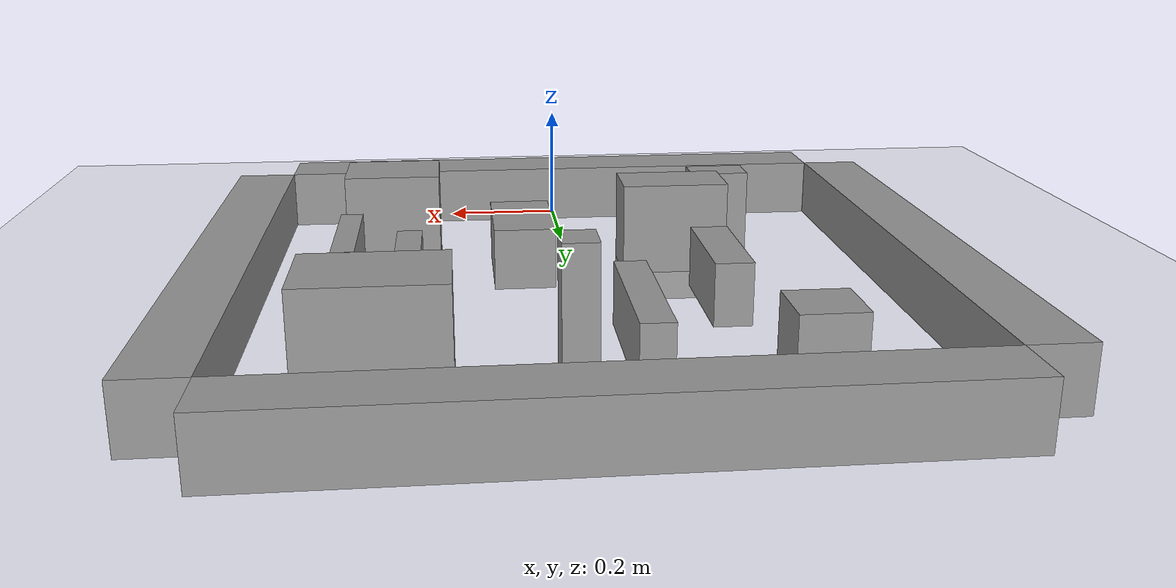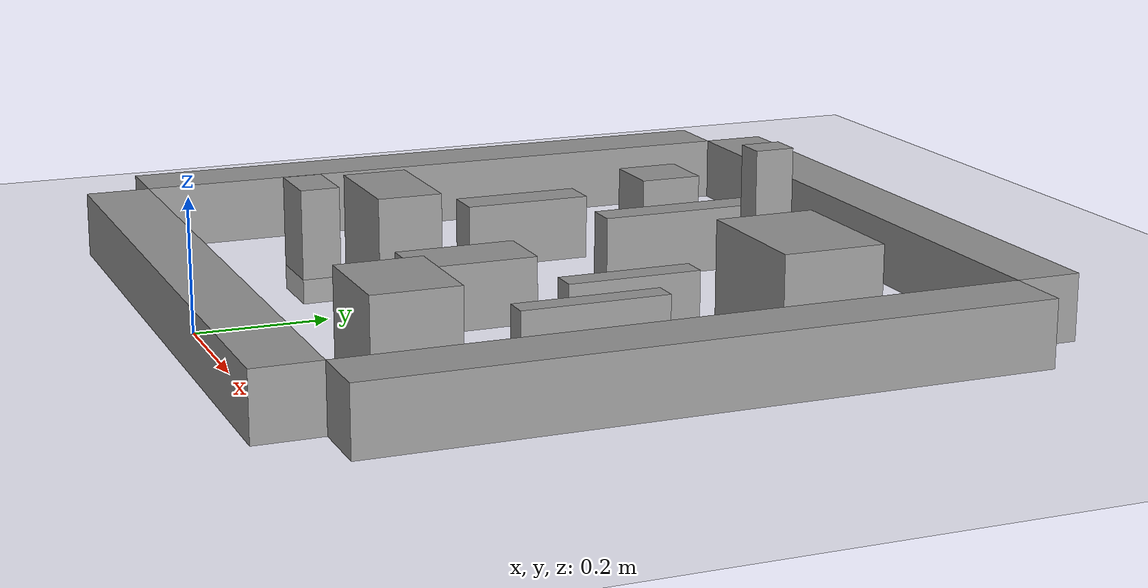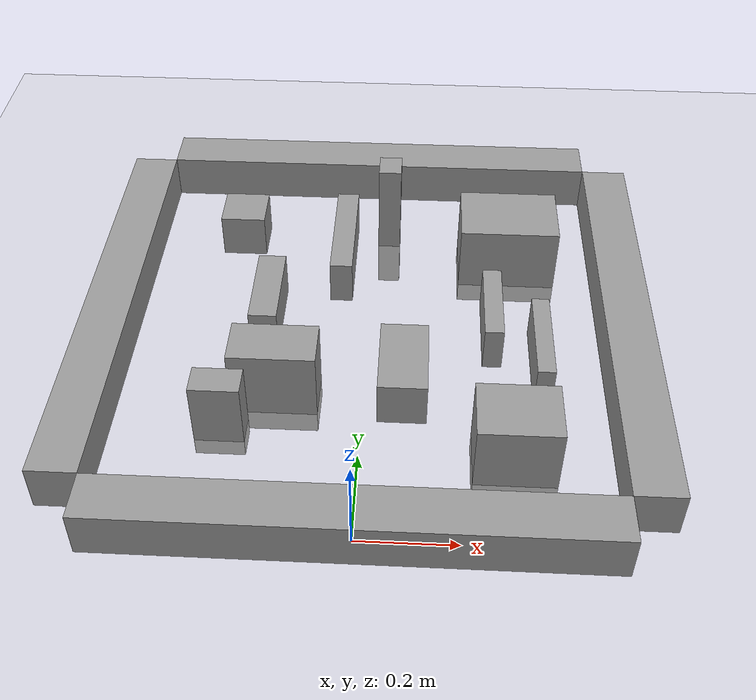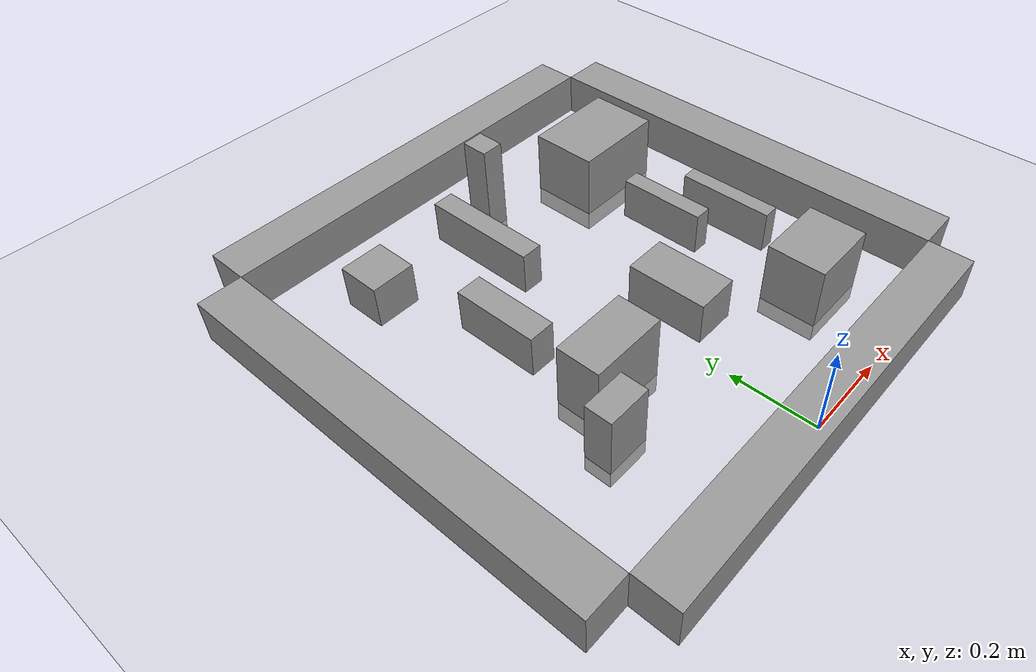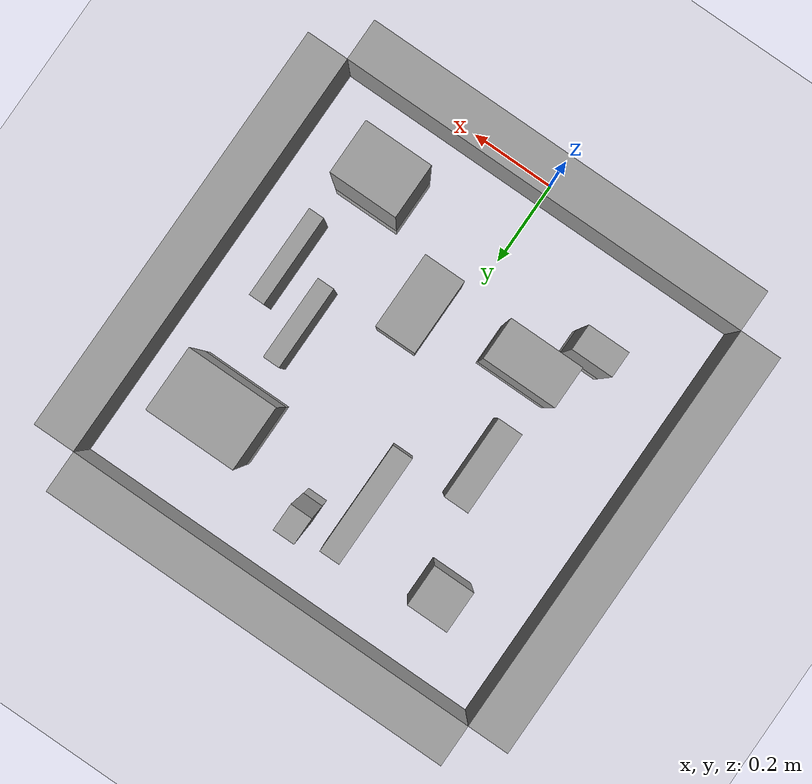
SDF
<sdf version="1.6">
 <world name="default">
  <physics type="ode">
   <ode><solver><type>quick</type><iters>50</iters><friction_model>cone_model</friction_model></solver></ode>
  </physics>
  <light name="sun" type="directional">
   <pose>0 0 10 0 -0 0</pose>
   <diffuse>0.8 0.8 0.8 1</diffuse>
   <specular>0.1 0.1 0.1 1</specular>
   <attenuation>
    <range>1000</range>
    <constant>0.9</constant>
    <linear>0.01</linear>
    <quadratic>0.001</quadratic>
   </attenuation>
   <direction>-0.5 0.5 -1</direction>
  </light>
  <model name="ground_plane">
   <static>1</static>
   <link name="link">
    <collision name="collision">
     <geometry><plane><normal>0 0 1</normal><size>100 100</size></plane></geometry>
     <surface><friction><ode><mu>100</mu><mu2>50</mu2></ode></friction></surface>
    </collision>
    <visual name="visual">
     <cast_shadows>0</cast_shadows>
     <geometry><plane><normal>0 0 1</normal><size>100 100</size></plane></geometry>
     <material>
      <script><uri>file://media/materials/scripts/gazebo.material</uri><name>Gazebo/Grey</name></script>
     </material>
    </visual>
   </link>
  </model>
  <gravity>0 0 -9.8</gravity>
  <magnetic_field>6e-06 2.3e-05 -4.2e-05</magnetic_field>
  <atmosphere type="adiabatic"/>
  <physics name="default_physics" default="0" type="ode">
   <max_step_size>0.001</max_step_size>
   <real_time_factor>1</real_time_factor>
   <real_time_update_rate>1000</real_time_update_rate>
  </physics>
  <scene><ambient>0.4 0.4 0.4 1</ambient><background>0.7 0.7 0.7 1</background><shadows>1</shadows></scene>
  <spherical_coordinates>
   <surface_model>EARTH_WGS84</surface_model>
   <latitude_deg>0</latitude_deg>
   <longitude_deg>0</longitude_deg>
   <elevation>0</elevation>
   <heading_deg>0</heading_deg>
  </spherical_coordinates>
  <model name="vector_world_3">
   <link name="link_0">
    <pose>-0.021753 -0.558911 0 0 -0 0</pose>
    <inertial>
     <mass>1</mass>
     <inertia>
      <ixx>0.166667</ixx>
      <ixy>0</ixy>
      <ixz>0</ixz>
      <iyy>0.166667</iyy>
      <iyz>0</iyz>
      <izz>0.166667</izz>
     </inertia>
    </inertial>
    <visual name="visual">
     <geometry><box><size>1 0.1 0.1</size></box></geometry>
     <material>
      <lighting>1</lighting>
      <script><uri>file://media/materials/scripts/gazebo.material</uri><name>Gazebo/Grey</name></script>
      <ambient>0.3 0.3 0.3 1</ambient>
      <diffuse>0.7 0.7 0.7 1</diffuse>
      <specular>0.01 0.01 0.01 1</specular>
      <emissive>0 0 0 1</emissive>
      <shader type="vertex"><normal_map>__default__</normal_map></shader>
     </material>
    </visual>
    <collision name="collision">
     <geometry><box><size>1 0.1 0.1</size></box></geometry>
     <surface>
      <friction>
       <ode><mu>1</mu><mu2>1</mu2><fdir1>0 0 0</fdir1><slip1>0</slip1><slip2>0</slip2></ode>
       <torsional>
        <coefficient>1</coefficient>
        <patch_radius>0</patch_radius>
        <surface_radius>0</surface_radius>
        <use_patch_radius>1</use_patch_radius>
        <ode><slip>0</slip></ode>
       </torsional>
      </friction>
      <bounce><restitution_coefficient>0</restitution_coefficient><threshold>1e+06</threshold></bounce>
      <contact>
       <collide_without_contact>0</collide_without_contact>
       <collide_without_contact_bitmask>1</collide_without_contact_bitmask>
       <collide_bitmask>1</collide_bitmask>
       <ode>
        <soft_cfm>0</soft_cfm>
        <soft_erp>0.2</soft_erp>
        <kp>1e+13</kp>
        <kd>1</kd>
        <max_vel>0.01</max_vel>
        <min_depth>0</min_depth>
       </ode>
       <bullet>
        <split_impulse>1</split_impulse>
        <split_impulse_penetration_threshold>-0.01</split_impulse_penetration_threshold>
        <soft_cfm>0</soft_cfm>
        <soft_erp>0.2</soft_erp>
        <kp>1e+13</kp>
        <kd>1</kd>
       </bullet>
      </contact>
     </surface>
    </collision>
   </link>
   <link name="link_0_clone">
    <pose>0.528247 -0.008911 0 0 -0 1.57</pose>
    <inertial>
     <mass>1</mass>
     <inertia>
      <ixx>0.166667</ixx>
      <ixy>0</ixy>
      <ixz>0</ixz>
      <iyy>0.166667</iyy>
      <iyz>0</iyz>
      <izz>0.166667</izz>
     </inertia>
    </inertial>
    <visual name="visual">
     <geometry><box><size>1 0.1 0.1</size></box></geometry>
     <material>
      <lighting>1</lighting>
      <script><uri>file://media/materials/scripts/gazebo.material</uri><name>Gazebo/Grey</name></script>
      <ambient>0.3 0.3 0.3 1</ambient>
      <diffuse>0.7 0.7 0.7 1</diffuse>
      <specular>0.01 0.01 0.01 1</specular>
      <emissive>0 0 0 1</emissive>
      <shader type="vertex"><normal_map>__default__</normal_map></shader>
     </material>
    </visual>
    <collision name="collision">
     <geometry><box><size>1 0.1 0.1</size></box></geometry>
     <surface>
      <friction>
       <ode><mu>1</mu><mu2>1</mu2><fdir1>0 0 0</fdir1><slip1>0</slip1><slip2>0</slip2></ode>
       <torsional>
        <coefficient>1</coefficient>
        <patch_radius>0</patch_radius>
        <surface_radius>0</surface_radius>
        <use_patch_radius>1</use_patch_radius>
        <ode><slip>0</slip></ode>
       </torsional>
      </friction>
      <bounce><restitution_coefficient>0</restitution_coefficient><threshold>1e+06</threshold></bounce>
      <contact>
       <collide_without_contact>0</collide_without_contact>
       <collide_without_contact_bitmask>1</collide_without_contact_bitmask>
       <collide_bitmask>1</collide_bitmask>
       <ode>
        <soft_cfm>0</soft_cfm>
        <soft_erp>0.2</soft_erp>
        <kp>1e+13</kp>
        <kd>1</kd>
        <max_vel>0.01</max_vel>
        <min_depth>0</min_depth>
       </ode>
       <bullet>
        <split_impulse>1</split_impulse>
        <split_impulse_penetration_threshold>-0.01</split_impulse_penetration_threshold>
        <soft_cfm>0</soft_cfm>
        <soft_erp>0.2</soft_erp>
        <kp>1e+13</kp>
        <kd>1</kd>
       </bullet>
      </contact>
     </surface>
    </collision>
   </link>
   <link name="link_0_clone_0">
    <pose>-0.021753 0.541089 0 0 -0 0</pose>
    <inertial>
     <mass>1</mass>
     <inertia>
      <ixx>0.166667</ixx>
      <ixy>0</ixy>
      <ixz>0</ixz>
      <iyy>0.166667</iyy>
      <iyz>0</iyz>
      <izz>0.166667</izz>
     </inertia>
    </inertial>
    <visual name="visual">
     <geometry><box><size>1 0.1 0.1</size></box></geometry>
     <material>
      <lighting>1</lighting>
      <script><uri>file://media/materials/scripts/gazebo.material</uri><name>Gazebo/Grey</name></script>
      <ambient>0.3 0.3 0.3 1</ambient>
      <diffuse>0.7 0.7 0.7 1</diffuse>
      <specular>0.01 0.01 0.01 1</specular>
      <emissive>0 0 0 1</emissive>
      <shader type="vertex"><normal_map>__default__</normal_map></shader>
     </material>
    </visual>
    <collision name="collision">
     <geometry><box><size>1 0.1 0.1</size></box></geometry>
     <surface>
      <friction>
       <ode><mu>1</mu><mu2>1</mu2><fdir1>0 0 0</fdir1><slip1>0</slip1><slip2>0</slip2></ode>
       <torsional>
        <coefficient>1</coefficient>
        <patch_radius>0</patch_radius>
        <surface_radius>0</surface_radius>
        <use_patch_radius>1</use_patch_radius>
        <ode><slip>0</slip></ode>
       </torsional>
      </friction>
      <bounce><restitution_coefficient>0</restitution_coefficient><threshold>1e+06</threshold></bounce>
      <contact>
       <collide_without_contact>0</collide_without_contact>
       <collide_without_contact_bitmask>1</collide_without_contact_bitmask>
       <collide_bitmask>1</collide_bitmask>
       <ode>
        <soft_cfm>0</soft_cfm>
        <soft_erp>0.2</soft_erp>
        <kp>1e+13</kp>
        <kd>1</kd>
        <max_vel>0.01</max_vel>
        <min_depth>0</min_depth>
       </ode>
       <bullet>
        <split_impulse>1</split_impulse>
        <split_impulse_penetration_threshold>-0.01</split_impulse_penetration_threshold>
        <soft_cfm>0</soft_cfm>
        <soft_erp>0.2</soft_erp>
        <kp>1e+13</kp>
        <kd>1</kd>
       </bullet>
      </contact>
     </surface>
    </collision>
   </link>
   <link name="link_0_clone_1">
    <pose>-0.571753 -0.008911 0 0 -0 1.57</pose>
    <inertial>
     <mass>1</mass>
     <inertia>
      <ixx>0.166667</ixx>
      <ixy>0</ixy>
      <ixz>0</ixz>
      <iyy>0.166667</iyy>
      <iyz>0</iyz>
      <izz>0.166667</izz>
     </inertia>
    </inertial>
    <visual name="visual">
     <geometry><box><size>1 0.1 0.1</size></box></geometry>
     <material>
      <lighting>1</lighting>
      <script><uri>file://media/materials/scripts/gazebo.material</uri><name>Gazebo/Grey</name></script>
      <ambient>0.3 0.3 0.3 1</ambient>
      <diffuse>0.7 0.7 0.7 1</diffuse>
      <specular>0.01 0.01 0.01 1</specular>
      <emissive>0 0 0 1</emissive>
      <shader type="vertex"><normal_map>__default__</normal_map></shader>
     </material>
    </visual>
    <collision name="collision">
     <geometry><box><size>1 0.1 0.1</size></box></geometry>
     <surface>
      <friction>
       <ode><mu>1</mu><mu2>1</mu2><fdir1>0 0 0</fdir1><slip1>0</slip1><slip2>0</slip2></ode>
       <torsional>
        <coefficient>1</coefficient>
        <patch_radius>0</patch_radius>
        <surface_radius>0</surface_radius>
        <use_patch_radius>1</use_patch_radius>
        <ode><slip>0</slip></ode>
       </torsional>
      </friction>
      <bounce><restitution_coefficient>0</restitution_coefficient><threshold>1e+06</threshold></bounce>
      <contact>
       <collide_without_contact>0</collide_without_contact>
       <collide_without_contact_bitmask>1</collide_without_contact_bitmask>
       <collide_bitmask>1</collide_bitmask>
       <ode>
        <soft_cfm>0</soft_cfm>
        <soft_erp>0.2</soft_erp>
        <kp>1e+13</kp>
        <kd>1</kd>
        <max_vel>0.01</max_vel>
        <min_depth>0</min_depth>
       </ode>
       <bullet>
        <split_impulse>1</split_impulse>
        <split_impulse_penetration_threshold>-0.01</split_impulse_penetration_threshold>
        <soft_cfm>0</soft_cfm>
        <soft_erp>0.2</soft_erp>
        <kp>1e+13</kp>
        <kd>1</kd>
       </bullet>
      </contact>
     </surface>
    </collision>
   </link>
   <link name="link_1">
    <pose>-0.299069 -0.300482 0 0 -0 0</pose>
    <inertial>
     <mass>1.11038</mass>
     <inertia>
      <ixx>0.337454</ixx>
      <ixy>0</ixy>
      <ixz>0</ixz>
      <iyy>0.395095</iyy>
      <iyz>0</iyz>
      <izz>0.127423</izz>
     </inertia>
    </inertial>
    <visual name="visual">
     <geometry><box><size>0.1 0.06141 0.180827</size></box></geometry>
     <material>
      <lighting>1</lighting>
      <script><uri>file://media/materials/scripts/gazebo.material</uri><name>Gazebo/Grey</name></script>
      <ambient>0.3 0.3 0.3 1</ambient>
      <diffuse>0.7 0.7 0.7 1</diffuse>
      <specular>0.01 0.01 0.01 1</specular>
      <emissive>0 0 0 1</emissive>
      <shader type="vertex"><normal_map>__default__</normal_map></shader>
     </material>
    </visual>
    <collision name="collision">
     <geometry><box><size>0.1 0.06141 0.180827</size></box></geometry>
     <surface>
      <friction>
       <ode><mu>1</mu><mu2>1</mu2><fdir1>0 0 0</fdir1><slip1>0</slip1><slip2>0</slip2></ode>
       <torsional>
        <coefficient>1</coefficient>
        <patch_radius>0</patch_radius>
        <surface_radius>0</surface_radius>
        <use_patch_radius>1</use_patch_radius>
        <ode><slip>0</slip></ode>
       </torsional>
      </friction>
      <bounce><restitution_coefficient>0</restitution_coefficient><threshold>1e+06</threshold></bounce>
      <contact>
       <collide_without_contact>0</collide_without_contact>
       <collide_without_contact_bitmask>1</collide_without_contact_bitmask>
       <collide_bitmask>1</collide_bitmask>
       <ode>
        <soft_cfm>0</soft_cfm>
        <soft_erp>0.2</soft_erp>
        <kp>1e+13</kp>
        <kd>1</kd>
        <max_vel>0.01</max_vel>
        <min_depth>0</min_depth>
       </ode>
       <bullet>
        <split_impulse>1</split_impulse>
        <split_impulse_penetration_threshold>-0.01</split_impulse_penetration_threshold>
        <soft_cfm>0</soft_cfm>
        <soft_erp>0.2</soft_erp>
        <kp>1e+13</kp>
        <kd>1</kd>
       </bullet>
      </contact>
     </surface>
    </collision>
   </link>
   <link name="link_1_clone">
    <pose>-0.08575 0.234776 0 0 -0 0</pose>
    <inertial>
     <mass>1.31971</mass>
     <inertia>
      <ixx>0.900924</ixx>
      <ixy>0</ixy>
      <ixz>0</ixz>
      <iyy>0.136609</iyy>
      <iyz>0</iyz>
      <izz>0.81758</izz>
     </inertia>
    </inertial>
    <visual name="visual">
     <geometry><box><size>0.049209 0.268272 0.1</size></box></geometry>
     <material>
      <lighting>1</lighting>
      <script><uri>file://media/materials/scripts/gazebo.material</uri><name>Gazebo/Grey</name></script>
      <ambient>0.3 0.3 0.3 1</ambient>
      <diffuse>0.7 0.7 0.7 1</diffuse>
      <specular>0.01 0.01 0.01 1</specular>
      <emissive>0 0 0 1</emissive>
      <shader type="vertex"><normal_map>__default__</normal_map></shader>
     </material>
    </visual>
    <collision name="collision">
     <geometry><box><size>0.049209 0.268272 0.1</size></box></geometry>
     <surface>
      <friction>
       <ode><mu>1</mu><mu2>1</mu2><fdir1>0 0 0</fdir1><slip1>0</slip1><slip2>0</slip2></ode>
       <torsional>
        <coefficient>1</coefficient>
        <patch_radius>0</patch_radius>
        <surface_radius>0</surface_radius>
        <use_patch_radius>1</use_patch_radius>
        <ode><slip>0</slip></ode>
       </torsional>
      </friction>
      <bounce><restitution_coefficient>0</restitution_coefficient><threshold>1e+06</threshold></bounce>
      <contact>
       <collide_without_contact>0</collide_without_contact>
       <collide_without_contact_bitmask>1</collide_without_contact_bitmask>
       <collide_bitmask>1</collide_bitmask>
       <ode>
        <soft_cfm>0</soft_cfm>
        <soft_erp>0.2</soft_erp>
        <kp>1e+13</kp>
        <kd>1</kd>
        <max_vel>0.01</max_vel>
        <min_depth>0</min_depth>
       </ode>
       <bullet>
        <split_impulse>1</split_impulse>
        <split_impulse_penetration_threshold>-0.01</split_impulse_penetration_threshold>
        <soft_cfm>0</soft_cfm>
        <soft_erp>0.2</soft_erp>
        <kp>1e+13</kp>
        <kd>1</kd>
       </bullet>
      </contact>
     </surface>
    </collision>
   </link>
   <link name="link_1_clone_0">
    <pose>-0.199069 -0.200482 0 0 -0 0</pose>
    <inertial>
     <mass>3.55301</mass>
     <inertia><ixx>1.49239</ixx><ixy>0</ixy><ixz>0</ixz><iyy>2.12139</iyy><iyz>0</iyz><izz>1.22117</izz></inertia>
    </inertial>
    <visual name="visual">
     <geometry><box><size>0.176761 0.1 0.201008</size></box></geometry>
     <material>
      <lighting>1</lighting>
      <script><uri>file://media/materials/scripts/gazebo.material</uri><name>Gazebo/Grey</name></script>
      <ambient>0.3 0.3 0.3 1</ambient>
      <diffuse>0.7 0.7 0.7 1</diffuse>
      <specular>0.01 0.01 0.01 1</specular>
      <emissive>0 0 0 1</emissive>
      <shader type="vertex"><normal_map>__default__</normal_map></shader>
     </material>
    </visual>
    <collision name="collision">
     <geometry><box><size>0.176761 0.1 0.201008</size></box></geometry>
     <surface>
      <friction>
       <ode><mu>1</mu><mu2>1</mu2><fdir1>0 0 0</fdir1><slip1>0</slip1><slip2>0</slip2></ode>
       <torsional>
        <coefficient>1</coefficient>
        <patch_radius>0</patch_radius>
        <surface_radius>0</surface_radius>
        <use_patch_radius>1</use_patch_radius>
        <ode><slip>0</slip></ode>
       </torsional>
      </friction>
      <bounce><restitution_coefficient>0</restitution_coefficient><threshold>1e+06</threshold></bounce>
      <contact>
       <collide_without_contact>0</collide_without_contact>
       <collide_without_contact_bitmask>1</collide_without_contact_bitmask>
       <collide_bitmask>1</collide_bitmask>
       <ode>
        <soft_cfm>0</soft_cfm>
        <soft_erp>0.2</soft_erp>
        <kp>1e+13</kp>
        <kd>1</kd>
        <max_vel>0.01</max_vel>
        <min_depth>0</min_depth>
       </ode>
       <bullet>
        <split_impulse>1</split_impulse>
        <split_impulse_penetration_threshold>-0.01</split_impulse_penetration_threshold>
        <soft_cfm>0</soft_cfm>
        <soft_erp>0.2</soft_erp>
        <kp>1e+13</kp>
        <kd>1</kd>
       </bullet>
      </contact>
     </surface>
    </collision>
   </link>
   <link name="link_1_clone_1">
    <pose>0.346451 -0.096404 0 0 -0 0</pose>
    <inertial>
     <mass>0.810945</mass>
     <inertia>
      <ixx>0.394356</ixx>
      <ixy>0</ixy>
      <ixz>0</ixz>
      <iyy>0.0767697</iyy>
      <iyz>0</iyz>
      <izz>0.335967</izz>
     </inertia>
    </inertial>
    <visual name="visual">
     <geometry><box><size>0.036881 0.219895 0.1</size></box></geometry>
     <material>
      <lighting>1</lighting>
      <script><uri>file://media/materials/scripts/gazebo.material</uri><name>Gazebo/Grey</name></script>
      <ambient>0.3 0.3 0.3 1</ambient>
      <diffuse>0.7 0.7 0.7 1</diffuse>
      <specular>0.01 0.01 0.01 1</specular>
      <emissive>0 0 0 1</emissive>
      <shader type="vertex"><normal_map>__default__</normal_map></shader>
     </material>
    </visual>
    <collision name="collision">
     <geometry><box><size>0.036881 0.219895 0.1</size></box></geometry>
     <surface>
      <friction>
       <ode><mu>1</mu><mu2>1</mu2><fdir1>0 0 0</fdir1><slip1>0</slip1><slip2>0</slip2></ode>
       <torsional>
        <coefficient>1</coefficient>
        <patch_radius>0</patch_radius>
        <surface_radius>0</surface_radius>
        <use_patch_radius>1</use_patch_radius>
        <ode><slip>0</slip></ode>
       </torsional>
      </friction>
      <bounce><restitution_coefficient>0</restitution_coefficient><threshold>1e+06</threshold></bounce>
      <contact>
       <collide_without_contact>0</collide_without_contact>
       <collide_without_contact_bitmask>1</collide_without_contact_bitmask>
       <collide_bitmask>1</collide_bitmask>
       <ode>
        <soft_cfm>0</soft_cfm>
        <soft_erp>0.2</soft_erp>
        <kp>1e+13</kp>
        <kd>1</kd>
        <max_vel>0.01</max_vel>
        <min_depth>0</min_depth>
       </ode>
       <bullet>
        <split_impulse>1</split_impulse>
        <split_impulse_penetration_threshold>-0.01</split_impulse_penetration_threshold>
        <soft_cfm>0</soft_cfm>
        <soft_erp>0.2</soft_erp>
        <kp>1e+13</kp>
        <kd>1</kd>
       </bullet>
      </contact>
     </surface>
    </collision>
   </link>
   <link name="link_1_clone_2">
    <pose>0.246451 0.003596 0 0 -0 0</pose>
    <inertial>
     <mass>0.807074</mass>
     <inertia>
      <ixx>0.337556</ixx>
      <ixy>0</ixy>
      <ixz>0</ixz>
      <iyy>0.0781569</iyy>
      <iyz>0</iyz>
      <izz>0.2812</izz>
     </inertia>
    </inertial>
    <visual name="visual">
     <geometry><box><size>0.04026 0.200471 0.1</size></box></geometry>
     <material>
      <lighting>1</lighting>
      <script><uri>file://media/materials/scripts/gazebo.material</uri><name>Gazebo/Grey</name></script>
      <ambient>0.3 0.3 0.3 1</ambient>
      <diffuse>0.7 0.7 0.7 1</diffuse>
      <specular>0.01 0.01 0.01 1</specular>
      <emissive>0 0 0 1</emissive>
      <shader type="vertex"><normal_map>__default__</normal_map></shader>
     </material>
    </visual>
    <collision name="collision">
     <geometry><box><size>0.04026 0.200471 0.1</size></box></geometry>
     <surface>
      <friction>
       <ode><mu>1</mu><mu2>1</mu2><fdir1>0 0 0</fdir1><slip1>0</slip1><slip2>0</slip2></ode>
       <torsional>
        <coefficient>1</coefficient>
        <patch_radius>0</patch_radius>
        <surface_radius>0</surface_radius>
        <use_patch_radius>1</use_patch_radius>
        <ode><slip>0</slip></ode>
       </torsional>
      </friction>
      <bounce><restitution_coefficient>0</restitution_coefficient><threshold>1e+06</threshold></bounce>
      <contact>
       <collide_without_contact>0</collide_without_contact>
       <collide_without_contact_bitmask>1</collide_without_contact_bitmask>
       <collide_bitmask>1</collide_bitmask>
       <ode>
        <soft_cfm>0</soft_cfm>
        <soft_erp>0.2</soft_erp>
        <kp>1e+13</kp>
        <kd>1</kd>
        <max_vel>0.01</max_vel>
        <min_depth>0</min_depth>
       </ode>
       <bullet>
        <split_impulse>1</split_impulse>
        <split_impulse_penetration_threshold>-0.01</split_impulse_penetration_threshold>
        <soft_cfm>0</soft_cfm>
        <soft_erp>0.2</soft_erp>
        <kp>1e+13</kp>
        <kd>1</kd>
       </bullet>
      </contact>
     </surface>
    </collision>
   </link>
   <link name="link_1_clone_3">
    <pose>0.01425 0.334776 0 0 -0 0</pose>
    <inertial>
     <mass>0.988568</mass>
     <inertia>
      <ixx>0.870009</ixx>
      <ixy>0</ixy>
      <ixz>0</ixz>
      <iyy>0.859599</iyy>
      <iyz>0</iyz>
      <izz>0.0520962</izz>
     </inertia>
    </inertial>
    <visual name="visual">
     <geometry><box><size>0.0503 0.061601 0.319083</size></box></geometry>
     <material>
      <lighting>1</lighting>
      <script><uri>file://media/materials/scripts/gazebo.material</uri><name>Gazebo/Grey</name></script>
      <ambient>0.3 0.3 0.3 1</ambient>
      <diffuse>0.7 0.7 0.7 1</diffuse>
      <specular>0.01 0.01 0.01 1</specular>
      <emissive>0 0 0 1</emissive>
      <shader type="vertex"><normal_map>__default__</normal_map></shader>
     </material>
    </visual>
    <collision name="collision">
     <geometry><box><size>0.0503 0.061601 0.319083</size></box></geometry>
     <surface>
      <friction>
       <ode><mu>1</mu><mu2>1</mu2><fdir1>0 0 0</fdir1><slip1>0</slip1><slip2>0</slip2></ode>
       <torsional>
        <coefficient>1</coefficient>
        <patch_radius>0</patch_radius>
        <surface_radius>0</surface_radius>
        <use_patch_radius>1</use_patch_radius>
        <ode><slip>0</slip></ode>
       </torsional>
      </friction>
      <bounce><restitution_coefficient>0</restitution_coefficient><threshold>1e+06</threshold></bounce>
      <contact>
       <collide_without_contact>0</collide_without_contact>
       <collide_without_contact_bitmask>1</collide_without_contact_bitmask>
       <collide_bitmask>1</collide_bitmask>
       <ode>
        <soft_cfm>0</soft_cfm>
        <soft_erp>0.2</soft_erp>
        <kp>1e+13</kp>
        <kd>1</kd>
        <max_vel>0.01</max_vel>
        <min_depth>0</min_depth>
       </ode>
       <bullet>
        <split_impulse>1</split_impulse>
        <split_impulse_penetration_threshold>-0.01</split_impulse_penetration_threshold>
        <soft_cfm>0</soft_cfm>
        <soft_erp>0.2</soft_erp>
        <kp>1e+13</kp>
        <kd>1</kd>
       </bullet>
      </contact>
     </surface>
    </collision>
   </link>
   <link name="link_1_clone_4">
    <pose>-0.240047 0.028913 0 0 -0 0</pose>
    <inertial>
     <mass>1.19492</mass>
     <inertia>
      <ixx>0.493097</ixx>
      <ixy>0</ixy>
      <ixz>0</ixz>
      <iyy>0.135553</iyy>
      <iyz>0</iyz>
      <izz>0.429497</izz>
     </inertia>
    </inertial>
    <visual name="visual">
     <geometry><box><size>0.060108 0.198797 0.1</size></box></geometry>
     <material>
      <lighting>1</lighting>
      <script><uri>file://media/materials/scripts/gazebo.material</uri><name>Gazebo/Grey</name></script>
      <ambient>0.3 0.3 0.3 1</ambient>
      <diffuse>0.7 0.7 0.7 1</diffuse>
      <specular>0.01 0.01 0.01 1</specular>
      <emissive>0 0 0 1</emissive>
      <shader type="vertex"><normal_map>__default__</normal_map></shader>
     </material>
    </visual>
    <collision name="collision">
     <geometry><box><size>0.060108 0.198797 0.1</size></box></geometry>
     <surface>
      <friction>
       <ode><mu>1</mu><mu2>1</mu2><fdir1>0 0 0</fdir1><slip1>0</slip1><slip2>0</slip2></ode>
       <torsional>
        <coefficient>1</coefficient>
        <patch_radius>0</patch_radius>
        <surface_radius>0</surface_radius>
        <use_patch_radius>1</use_patch_radius>
        <ode><slip>0</slip></ode>
       </torsional>
      </friction>
      <bounce><restitution_coefficient>0</restitution_coefficient><threshold>1e+06</threshold></bounce>
      <contact>
       <collide_without_contact>0</collide_without_contact>
       <collide_without_contact_bitmask>1</collide_without_contact_bitmask>
       <collide_bitmask>1</collide_bitmask>
       <ode>
        <soft_cfm>0</soft_cfm>
        <soft_erp>0.2</soft_erp>
        <kp>1e+13</kp>
        <kd>1</kd>
        <max_vel>0.01</max_vel>
        <min_depth>0</min_depth>
       </ode>
       <bullet>
        <split_impulse>1</split_impulse>
        <split_impulse_penetration_threshold>-0.01</split_impulse_penetration_threshold>
        <soft_cfm>0</soft_cfm>
        <soft_erp>0.2</soft_erp>
        <kp>1e+13</kp>
        <kd>1</kd>
       </bullet>
      </contact>
     </surface>
    </collision>
   </link>
   <link name="link_1_clone_5">
    <pose>0.281757 -0.350596 0 0 -0 0</pose>
    <inertial>
     <mass>3.95172</mass>
     <inertia><ixx>1.69566</ixx><ixy>0</ixy><ixz>0</ixz><iyy>2.01959</iyy><iyz>0</iyz><izz>1.43614</izz></inertia>
    </inertial>
    <visual name="visual">
     <geometry><box><size>0.163474 0.129951 0.186021</size></box></geometry>
     <material>
      <lighting>1</lighting>
      <script><uri>file://media/materials/scripts/gazebo.material</uri><name>Gazebo/Grey</name></script>
      <ambient>0.3 0.3 0.3 1</ambient>
      <diffuse>0.7 0.7 0.7 1</diffuse>
      <specular>0.01 0.01 0.01 1</specular>
      <emissive>0 0 0 1</emissive>
      <shader type="vertex"><normal_map>__default__</normal_map></shader>
     </material>
    </visual>
    <collision name="collision">
     <geometry><box><size>0.163474 0.129951 0.186021</size></box></geometry>
     <surface>
      <friction>
       <ode><mu>1</mu><mu2>1</mu2><fdir1>0 0 0</fdir1><slip1>0</slip1><slip2>0</slip2></ode>
       <torsional>
        <coefficient>1</coefficient>
        <patch_radius>0</patch_radius>
        <surface_radius>0</surface_radius>
        <use_patch_radius>1</use_patch_radius>
        <ode><slip>0</slip></ode>
       </torsional>
      </friction>
      <bounce><restitution_coefficient>0</restitution_coefficient><threshold>1e+06</threshold></bounce>
      <contact>
       <collide_without_contact>0</collide_without_contact>
       <collide_without_contact_bitmask>1</collide_without_contact_bitmask>
       <collide_bitmask>1</collide_bitmask>
       <ode>
        <soft_cfm>0</soft_cfm>
        <soft_erp>0.2</soft_erp>
        <kp>1e+13</kp>
        <kd>1</kd>
        <max_vel>0.01</max_vel>
        <min_depth>0</min_depth>
       </ode>
       <bullet>
        <split_impulse>1</split_impulse>
        <split_impulse_penetration_threshold>-0.01</split_impulse_penetration_threshold>
        <soft_cfm>0</soft_cfm>
        <soft_erp>0.2</soft_erp>
        <kp>1e+13</kp>
        <kd>1</kd>
       </bullet>
      </contact>
     </surface>
    </collision>
   </link>
   <link name="link_1_clone_6">
    <pose>0.060604 -0.173591 0 0 -0 0</pose>
    <inertial>
     <mass>1.83423</mass>
     <inertia>
      <ixx>0.667113</ixx>
      <ixy>0</ixy>
      <ixz>0</ixz>
      <iyy>0.305706</iyy>
      <iyz>0</iyz>
      <izz>0.667113</izz>
     </inertia>
    </inertial>
    <visual name="visual">
     <geometry><box><size>0.1 0.183423 0.1</size></box></geometry>
     <material>
      <lighting>1</lighting>
      <script><uri>file://media/materials/scripts/gazebo.material</uri><name>Gazebo/Grey</name></script>
      <ambient>0.3 0.3 0.3 1</ambient>
      <diffuse>0.7 0.7 0.7 1</diffuse>
      <specular>0.01 0.01 0.01 1</specular>
      <emissive>0 0 0 1</emissive>
      <shader type="vertex"><normal_map>__default__</normal_map></shader>
     </material>
    </visual>
    <collision name="collision">
     <geometry><box><size>0.1 0.183423 0.1</size></box></geometry>
     <surface>
      <friction>
       <ode><mu>1</mu><mu2>1</mu2><fdir1>0 0 0</fdir1><slip1>0</slip1><slip2>0</slip2></ode>
       <torsional>
        <coefficient>1</coefficient>
        <patch_radius>0</patch_radius>
        <surface_radius>0</surface_radius>
        <use_patch_radius>1</use_patch_radius>
        <ode><slip>0</slip></ode>
       </torsional>
      </friction>
      <bounce><restitution_coefficient>0</restitution_coefficient><threshold>1e+06</threshold></bounce>
      <contact>
       <collide_without_contact>0</collide_without_contact>
       <collide_without_contact_bitmask>1</collide_without_contact_bitmask>
       <collide_bitmask>1</collide_bitmask>
       <ode>
        <soft_cfm>0</soft_cfm>
        <soft_erp>0.2</soft_erp>
        <kp>1e+13</kp>
        <kd>1</kd>
        <max_vel>0.01</max_vel>
        <min_depth>0</min_depth>
       </ode>
       <bullet>
        <split_impulse>1</split_impulse>
        <split_impulse_penetration_threshold>-0.01</split_impulse_penetration_threshold>
        <soft_cfm>0</soft_cfm>
        <soft_erp>0.2</soft_erp>
        <kp>1e+13</kp>
        <kd>1</kd>
       </bullet>
      </contact>
     </surface>
    </collision>
   </link>
   <link name="link_1_clone_7">
    <pose>0.28608 0.248146 0 0 -0 0</pose>
    <inertial>
     <mass>6.50837</mass>
     <inertia><ixx>3.35384</ixx><ixy>0</ixy><ixz>0</ixz><iyy>4.58919</iyy><iyz>0</iyz><izz>3.83039</izz></inertia>
    </inertial>
    <visual name="visual">
     <geometry><box><size>0.216097 0.154667 0.194717</size></box></geometry>
     <material>
      <lighting>1</lighting>
      <script><uri>file://media/materials/scripts/gazebo.material</uri><name>Gazebo/Grey</name></script>
      <ambient>0.3 0.3 0.3 1</ambient>
      <diffuse>0.7 0.7 0.7 1</diffuse>
      <specular>0.01 0.01 0.01 1</specular>
      <emissive>0 0 0 1</emissive>
      <shader type="vertex"><normal_map>__default__</normal_map></shader>
     </material>
    </visual>
    <collision name="collision">
     <geometry><box><size>0.216097 0.154667 0.194717</size></box></geometry>
     <surface>
      <friction>
       <ode><mu>1</mu><mu2>1</mu2><fdir1>0 0 0</fdir1><slip1>0</slip1><slip2>0</slip2></ode>
       <torsional>
        <coefficient>1</coefficient>
        <patch_radius>0</patch_radius>
        <surface_radius>0</surface_radius>
        <use_patch_radius>1</use_patch_radius>
        <ode><slip>0</slip></ode>
       </torsional>
      </friction>
      <bounce><restitution_coefficient>0</restitution_coefficient><threshold>1e+06</threshold></bounce>
      <contact>
       <collide_without_contact>0</collide_without_contact>
       <collide_without_contact_bitmask>1</collide_without_contact_bitmask>
       <collide_bitmask>1</collide_bitmask>
       <ode>
        <soft_cfm>0</soft_cfm>
        <soft_erp>0.2</soft_erp>
        <kp>1e+13</kp>
        <kd>1</kd>
        <max_vel>0.01</max_vel>
        <min_depth>0</min_depth>
       </ode>
       <bullet>
        <split_impulse>1</split_impulse>
        <split_impulse_penetration_threshold>-0.01</split_impulse_penetration_threshold>
        <soft_cfm>0</soft_cfm>
        <soft_erp>0.2</soft_erp>
        <kp>1e+13</kp>
        <kd>1</kd>
       </bullet>
      </contact>
     </surface>
    </collision>
   </link>
   <link name="link_1_clone_8">
    <pose>-0.324646 0.306992 0 0 -0 0</pose>
    <inertial>
     <mass>1</mass>
     <inertia>
      <ixx>0.166667</ixx>
      <ixy>0</ixy>
      <ixz>0</ixz>
      <iyy>0.166667</iyy>
      <iyz>0</iyz>
      <izz>0.166667</izz>
     </inertia>
    </inertial>
    <visual name="visual">
     <geometry><box><size>0.1 0.1 0.1</size></box></geometry>
     <material>
      <lighting>1</lighting>
      <script><uri>file://media/materials/scripts/gazebo.material</uri><name>Gazebo/Grey</name></script>
      <ambient>0.3 0.3 0.3 1</ambient>
      <diffuse>0.7 0.7 0.7 1</diffuse>
      <specular>0.01 0.01 0.01 1</specular>
      <emissive>0 0 0 1</emissive>
      <shader type="vertex"><normal_map>__default__</normal_map></shader>
     </material>
    </visual>
    <collision name="collision">
     <geometry><box><size>0.1 0.1 0.1</size></box></geometry>
     <surface>
      <friction>
       <ode><mu>1</mu><mu2>1</mu2><fdir1>0 0 0</fdir1><slip1>0</slip1><slip2>0</slip2></ode>
       <torsional>
        <coefficient>1</coefficient>
        <patch_radius>0</patch_radius>
        <surface_radius>0</surface_radius>
        <use_patch_radius>1</use_patch_radius>
        <ode><slip>0</slip></ode>
       </torsional>
      </friction>
      <bounce><restitution_coefficient>0</restitution_coefficient><threshold>1e+06</threshold></bounce>
      <contact>
       <collide_without_contact>0</collide_without_contact>
       <collide_without_contact_bitmask>1</collide_without_contact_bitmask>
       <collide_bitmask>1</collide_bitmask>
       <ode>
        <soft_cfm>0</soft_cfm>
        <soft_erp>0.2</soft_erp>
        <kp>1e+13</kp>
        <kd>1</kd>
        <max_vel>0.01</max_vel>
        <min_depth>0</min_depth>
       </ode>
       <bullet>
        <split_impulse>1</split_impulse>
        <split_impulse_penetration_threshold>-0.01</split_impulse_penetration_threshold>
        <soft_cfm>0</soft_cfm>
        <soft_erp>0.2</soft_erp>
        <kp>1e+13</kp>
        <kd>1</kd>
       </bullet>
      </contact>
     </surface>
    </collision>
   </link>
   <static>0</static>
   <pose>0.021753 0.558911 0.05 0 -0 0</pose>
  </model>
 </world>
</sdf>
